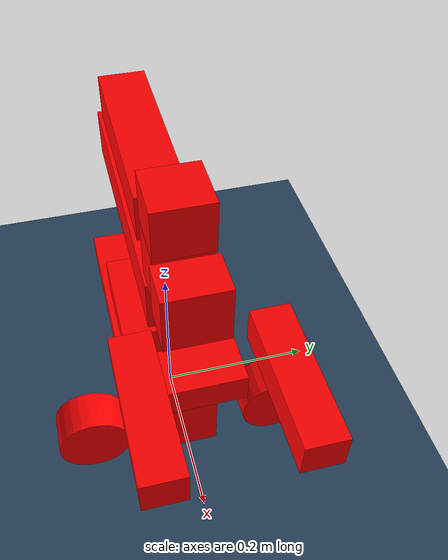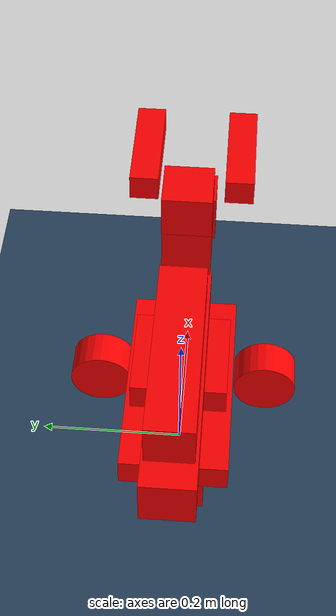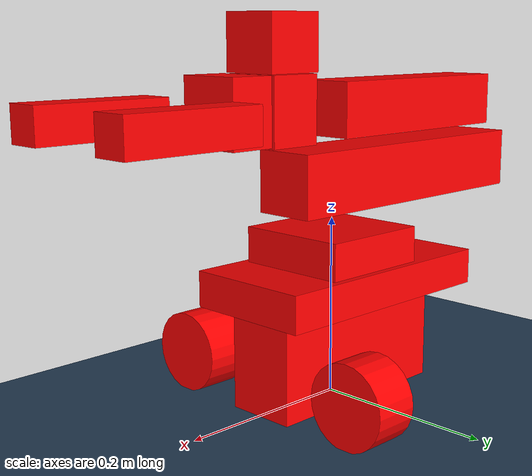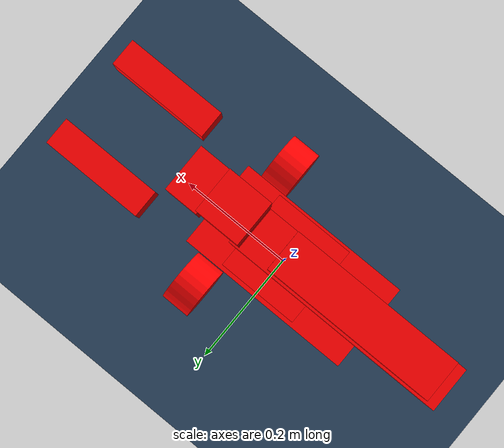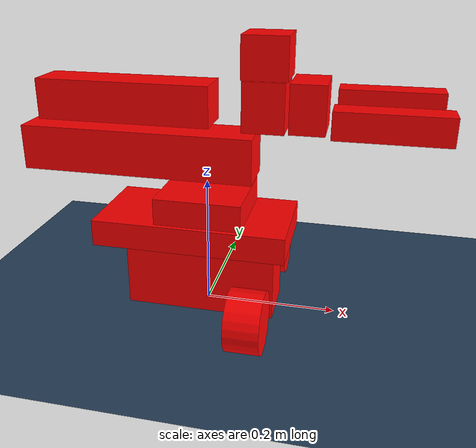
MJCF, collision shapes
<mujoco model="Pinapple scene">
  <include file="pineapple_arm.xml"/>

  <statistic center="0 0 0.1" extent="0.8"/>

  <visual>
    <headlight diffuse="0.6 0.6 0.6" ambient="0.3 0.3 0.3" specular="0 0 0"/>
    <rgba haze="0.15 0.25 0.35 1"/>
    <global azimuth="-130" elevation="-20"/>
  </visual>

  <asset>
    <texture type="skybox" builtin="gradient" rgb1="0.3 0.5 0.7" rgb2="0 0 0" width="512" height="3072"/>
    <texture type="2d" name="groundplane" builtin="checker" mark="edge" rgb1="0.2 0.3 0.4" rgb2="0.1 0.2 0.3"
      markrgb="0.8 0.8 0.8" width="300" height="300"/>
    <material name="groundplane" texture="groundplane" texuniform="true" texrepeat="5 5" reflectance="0.2"/>
  </asset>

  <worldbody>
    <light pos="0 0 1.5" dir="0 0 -1" directional="true"/>
    <geom name="floor" size="0 0 0.05" type="plane" material="groundplane"/>

  </worldbody>
</mujoco>

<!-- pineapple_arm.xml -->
<mujoco model="pineappleV3">
  <compiler angle="radian" meshdir="meshes/"/>

  <default>
    <default class="pinapple_arm">
        <geom friction="0.4" margin="0.001" condim="1"/>
        <joint damping="0.02" armature="0.004" frictionloss="0.1"/>
        <default class="arm_4310">
            <motor ctrlrange="-7.0 7.0"/>
        </default>
        <default class="arm_4340">
            <motor ctrlrange="-27.0 27.0"/>
        </default>
        <default class="visual">
            <geom type="mesh" contype="0" conaffinity="0" group="2"/>
        </default>
        <default class="collision">
            <geom group="3" type="mesh" rgba="1 0 0 0.3" contype="1" conaffinity="1"/>
        </default>
    </default>
  </default>

  <asset>
    <material name="Opaque(255,255,255)" specular="0.5" shininess="0.5" rgba="1.000000 1.000000 1.000000 1.0"/>
    <material name="Opaque(38,83,134)" specular="0.5" shininess="0.5" rgba="0.149020 0.325490 0.525490 1.0"/>
    <material name="Opaque(20,32,65)" specular="0.5" shininess="0.5" rgba="0.078431 0.125490 0.254902 1.0"/>
    <material name="Opaque(255,166,27)" specular="0.5" shininess="0.5" rgba="1.000000 0.650980 0.105882 1.0"/>
    <material name="Opaque(75,75,75)" specular="0.5" shininess="0.5" rgba="0.294118 0.294118 0.294118 1.0"/>
    <material name="Opaque(38,83,143)" specular="0.5" shininess="0.5" rgba="0.149020 0.325490 0.560784 1.0"/>
    <material name="Opaque(247,66,66)" specular="0.5" shininess="0.5" rgba="0.968627 0.258824 0.258824 1.0"/>
    <material name="Opaque(52,52,52)" specular="0.5" shininess="0.5" rgba="0.203922 0.203922 0.203922 1.0"/>
    <material name="Opaque(229,229,229)" specular="0.5" shininess="0.5" rgba="0.898039 0.898039 0.898039 1.0"/>
    <material name="Opaque(245,245,246)" specular="0.5" shininess="0.5" rgba="0.960784 0.960784 0.964706 1.0"/>
    <material name="Opaque(255,174,33)" specular="0.5" shininess="0.5" rgba="1.000000 0.682353 0.129412 1.0"/>
    <material name="Opaque(63,63,63)" specular="0.5" shininess="0.5" rgba="0.247059 0.247059 0.247059 1.0"/>
    <material name="Opaque(44,44,39)" specular="0.5" shininess="0.5" rgba="0.172549 0.172549 0.152941 1.0"/>
    <material name="Opaque(40,79,210)" specular="0.5" shininess="0.5" rgba="0.156863 0.309804 0.823529 1.0"/>
    <mesh file="base_link_0.obj"/>
    <mesh file="base_link_1.obj"/>
    <mesh file="base_link_2.obj"/>
    <mesh file="base_link_3.obj"/>
    <mesh file="base_link_4.obj"/>
    <mesh file="base_link_5.obj"/>
    <mesh file="base_link_7.obj"/>
    <mesh file="base_link_8.obj"/>
    <mesh file="base_link_9.obj"/>
    <mesh file="base_link_10.obj"/>
    <mesh file="base_link_11.obj"/>
    <mesh file="base_link_12.obj"/>
    <mesh file="base_link_13.obj"/>
    <mesh file="fore_arm_0.obj"/>
    <mesh file="fore_arm_1.obj"/>
    <mesh file="fore_arm_2.obj"/>
    <mesh file="5dof_0.obj"/>
    <mesh file="5dof_1.obj"/>
    <mesh file="6dof_0.obj"/>
    <mesh file="6dof_1.obj"/>
    <mesh file="arm_base_0.obj"/>
    <mesh file="upper_arm_0.obj"/>
    <mesh file="upper_arm_1.obj"/>
    <mesh file="upper_arm_2.obj"/>
    <mesh file="hip_thigh_conn_0.obj"/>
    <mesh file="thigh_l_0.obj"/>
    <mesh file="thigh_l_1.obj"/>
    <mesh file="thigh_r_0.obj"/>
    <mesh file="thigh_r_1.obj"/>
    <mesh file="calf_l_0.obj"/>
    <mesh file="calf_l_1.obj"/>
    <mesh file="calf_r_0.obj"/>
    <mesh file="calf_r_1.obj"/>
    <mesh file="wheel_l_0.obj"/>
    <mesh file="wheel_l_1.obj"/>
    <mesh file="wheel_r_0.obj"/>
    <mesh file="wheel_r_1.obj"/>
    <mesh name="gripper_case_link" file="gripper_case_link.STL"/>
    <mesh name="gripper_left_link" file="gripper_left_link.STL"/>
    <mesh name="gripper_right_link" file="gripper_right_link.STL"/>
  </asset>

  <worldbody>
    <body name="base_link" pos="0 0 0" childclass="pinapple_arm">
      <site name="imu" pos="0 0 0" />
      <inertial pos="0.00743277 -0.00031002 0.0824108" mass="4.6" fullinertia="0.03542461 0.04154315 0.04752478 -5.543E-05 0.00267146 2.215E-05" />
      <geom mesh="base_link_0" material="Opaque(40,79,210)" class="visual"/>
      <geom mesh="base_link_1" material="Opaque(44,44,39)" class="visual"/>
      <geom mesh="base_link_2" material="Opaque(63,63,63)" class="visual"/>
      <geom mesh="base_link_3" material="Opaque(255,174,33)" class="visual"/>
      <geom mesh="base_link_4" material="Opaque(245,245,246)" class="visual"/>
      <geom mesh="base_link_5" material="Opaque(229,229,229)" class="visual"/>
      <geom mesh="base_link_7" material="Opaque(247,66,66)" class="visual"/>
      <geom mesh="base_link_8" material="Opaque(38,83,143)" class="visual"/>
      <geom mesh="base_link_9" material="Opaque(75,75,75)" class="visual"/>
      <geom mesh="base_link_10" material="Opaque(255,166,27)" class="visual"/>
      <geom mesh="base_link_11" material="Opaque(20,32,65)" class="visual"/>
      <geom mesh="base_link_12" material="Opaque(38,83,134)" class="visual"/>
      <geom mesh="base_link_13" material="Opaque(255,255,255)" class="visual"/>
      <geom size="0.115 0.04 0.06" pos="-0.005 0 0.05" type="box" class='collision'/>
      <geom size="0.145 0.0725 0.02" pos="-0.015 0 0.13" type="box" class='collision'/>
      <geom size="0.065 0.065 0.02" pos="0 0 0.17" type="box" class='collision'/>
      <geom size="0.045 0.025" pos="0.0864 -0.1208 0.043" quat="0.707388 0 0.706825 0" type="cylinder" class='collision'/>
      <geom size="0.045 0.025" pos="0.0864 0.1208 0.043" quat="0.707388 0 0.706825 0" type="cylinder" class='collision'/>
      <body name="arm_base" pos="0.00095065 -0.00034599 0.192735">
        <inertial pos="0.0128934 -0.00240469 0.0250571" quat="0.268128 0.332439 -0.559819 0.710066" mass="0.254904" diaginertia="0.000483589 0.000358933 0.000241618"/>
        <geom mesh="arm_base_0" material="Opaque(63,63,63)" class="visual"/>
        <joint name="arm_joint" pos="0 0 0" axis="0 0 1" range="-1.5708 1.5708"/>
        <body name="upper_arm" pos="0.0392 -0.0355 0.052">
          <inertial pos="-0.150016 0.0354665 1.966e-07" quat="-0.0013465 0.707114 0.000508502 0.707098" mass="1.25745" diaginertia="0.020331 0.0202509 0.000947407"/>
          <geom mesh="upper_arm_0" material="Opaque(38,83,134)" class="visual"/>
          <geom mesh="upper_arm_1" material="Opaque(245,245,246)" class="visual"/>
          <geom mesh="upper_arm_2" material="Opaque(63,63,63)" class="visual"/>
          <joint name="arm_base_joint" pos="0 0 0" axis="0 1 0" range="0 3.1416"/>
          <geom size="0.1765 0.035 0.034" pos="-0.1427 0.03553 0" type="box" class='collision'/>
          <body name="fore_arm" pos="-0.3 0.07082 0">
            <inertial pos="0.145618 -0.0354891 0.064308" quat="0.0908869 0.658182 0.0749458 0.743586" mass="0.975742" diaginertia="0.0120217 0.0118584 0.00111232"/>
            <geom mesh="fore_arm_0" material="Opaque(63,63,63)" class="visual"/>
            <geom mesh="fore_arm_1" material="Opaque(38,83,134)" class="visual"/>
            <geom mesh="fore_arm_2" material="Opaque(245,245,246)" class="visual"/>
            <joint name="upper_arm_joint" pos="0 0 0" axis="0 1 0" range="-3.1416 0"/>
            <geom size="0.13 0.031 0.03" pos="0.1408 -0.0353 0.075" type="box" class='collision'/>
            <body name="5dof" pos="0.2698 -0.00295 0.075">
              <inertial pos="0.0565324 -0.0326958 0.0568577" quat="0.0161993 0.446378 -0.0050724 0.894684" mass="0.545046" diaginertia="0.00136273 0.00105199 0.000618399"/>
              <geom mesh="5dof_0" material="Opaque(245,245,246)" class="visual"/>
              <geom mesh="5dof_1" material="Opaque(63,63,63)" class="visual"/>
              <joint name="fore_arm_joint" pos="0 0 0" axis="0 1 0" range="-1.5708 1.7453"/>
              <geom size="0.0325 0.0325 0.03" pos="0.079 -0.0323 0.07075" type="box" class='collision'/>
              <body name="6dof" pos="0.08 -0.0328 0.04075">
                <inertial pos="-0.00187795 -1.398e-08 -0.0344311" quat="0.999167 3.7003e-06 0.0407959 -7.87422e-06" mass="0.366853" diaginertia="0.000262995 0.00025222 0.000232165"/>
                <geom mesh="6dof_0" material="Opaque(38,83,143)" class="visual"/>
                <geom mesh="6dof_1" material="Opaque(245,245,246)" class="visual"/>
                <joint name="5dof_joint" pos="0 0 0" axis="0 0 1" range="-1.5708 1.5708"/>
                <geom size="0.03 0.0325 0.036" pos="-0.002 0 -0.037" type="box" class='collision'/>
                <body name="gripper_case_link" pos="0.029 0 -0.04075">
                  <inertial pos="0.0330564 5.996e-05 0.00932181" quat="0.688833 0.704189 -0.125804 0.117472" mass="0.4" diaginertia="0.000558638 0.000509874 0.000345138"/>
                  <joint name="gripper_case_joint" pos="0 0 0" axis="1 0 0" range="-1.5708 1.5708"/>
                  <geom type="mesh" contype="0" conaffinity="0" group="1" density="0" rgba="0.792157 0.819608 0.933333 1" mesh="gripper_case_link"/>
                  <geom size="0.025 0.0355 0.035" pos="0.03 0 0.005" type="box" class='collision'/>
                  <body name="gripper_left_link" pos="0.0744 0.060275 -0.000100007">
                    <inertial pos="0.0362489 0.00264813 -0.00147696" quat="-0.105549 0.680557 -0.0836824 0.720207" mass="0.1" diaginertia="0.000140089 0.000133219 3.07923e-05"/>
                    <joint name="gripper_left_joint" pos="0 0 0" axis="0 1 0" type="slide" range="0 0.04" actuatorfrcrange="-1 1"/>
                    <geom type="mesh" contype="0" conaffinity="0" group="1" density="0" rgba="0.792157 0.819608 0.933333 1" mesh="gripper_left_link"/>
                    <geom size="0.0745 0.02 0.0188" pos="0.065 0.006 0" type="box" class='collision'/>
                  </body>
                  <body name="gripper_right_link" pos="0.0744 -0.060275 -0.000100007">
                    <inertial pos="0.036249 -0.00264818 0.00164906" quat="-0.0848077 0.720005 -0.10674 0.680446" mass="0.1" diaginertia="0.00014009 0.000133217 3.08033e-05"/>
                    <joint name="gripper_right_joint" pos="0 0 0" axis="0 -1 0" type="slide" range="-0.04 0" actuatorfrcrange="-1 1"/>
                    <geom type="mesh" contype="0" conaffinity="0" group="1" density="0" rgba="0.792157 0.819608 0.933333 1" mesh="gripper_right_link"/>
                    <geom size="0.0745 0.02 0.0188" pos="0.065 -0.006 0" type="box" class='collision'/>
                  </body>
                </body>
              </body>
            </body>
          </body>
        </body>
      </body>
    </body>
  </worldbody>

  <actuator>

    <motor class="arm_4340" name="arm_1_dof" joint="arm_joint" />
    <motor class="arm_4340" name="arm_2_dof" joint="arm_base_joint" />
    <motor class="arm_4340" name="arm_3_dof" joint="upper_arm_joint" />
    <motor class="arm_4310" name="arm_4_dof" joint="fore_arm_joint" />
    <motor class="arm_4310" name="arm_5_dof" joint="5dof_joint" />
    <motor class="arm_4310" name="arm_6_dof" joint="gripper_case_joint" />

  </actuator>

  <sensor>

      <jointpos name="arm_1_dof_pos" joint="arm_joint" noise="0.01" />
      <jointpos name="arm_2_dof_pos" joint="arm_base_joint" noise="0.01" />
      <jointpos name="arm_3_dof_pos" joint="upper_arm_joint" noise="0.01" />
      <jointpos name="arm_4_dof_pos" joint="fore_arm_joint" noise="0.01" />
      <jointpos name="arm_5_dof_pos" joint="5dof_joint" noise="0.01" />
      <jointpos name="arm_6_dof_pos" joint="gripper_case_joint" noise="0.01" />

      <jointvel name="arm_1_dof_vel" joint="arm_joint" noise="0.05" />
      <jointvel name="arm_2_dof_vel" joint="arm_base_joint" noise="0.05" />
      <jointvel name="arm_3_dof_vel" joint="upper_arm_joint" noise="0.05" />
      <jointvel name="arm_4_dof_vel" joint="fore_arm_joint" noise="0.05" />
      <jointvel name="arm_5_dof_vel" joint="5dof_joint" noise="0.05" />
      <jointvel name="arm_6_dof_vel" joint="gripper_case_joint" noise="0.05" />

      <jointactuatorfrc name="arm_1_dof_torque" joint="arm_joint" noise="0.01" />
      <jointactuatorfrc name="arm_2_dof_torque" joint="arm_base_joint" noise="0.01" />
      <jointactuatorfrc name="arm_3_dof_torque" joint="upper_arm_joint" noise="0.01" />
      <jointactuatorfrc name="arm_4_dof_torque" joint="fore_arm_joint" noise="0.01" />
      <jointactuatorfrc name="arm_5_dof_torque" joint="5dof_joint" noise="0.01" />
      <jointactuatorfrc name="arm_6_dof_torque" joint="gripper_case_joint" noise="0.01" />

      <framequat name="imu_quat" objtype="site" objname="imu" noise="0.05"/>
      <gyro name="imu_gyro" site="imu" noise="0.1"/>
      <accelerometer name="imu_acc" site="imu"/>

      <framepos name="frame_pos" objtype="site" objname="imu" />
      <framelinvel name="frame_lin_vel" objtype="site" objname="imu"/>
      <frameangvel name="frame_ang_vel" objtype="site" objname="imu"/>
  </sensor>

</mujoco>
